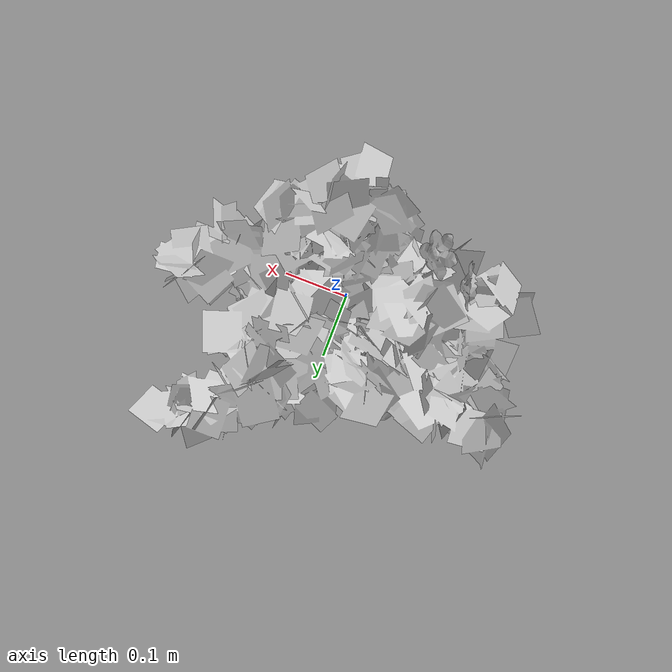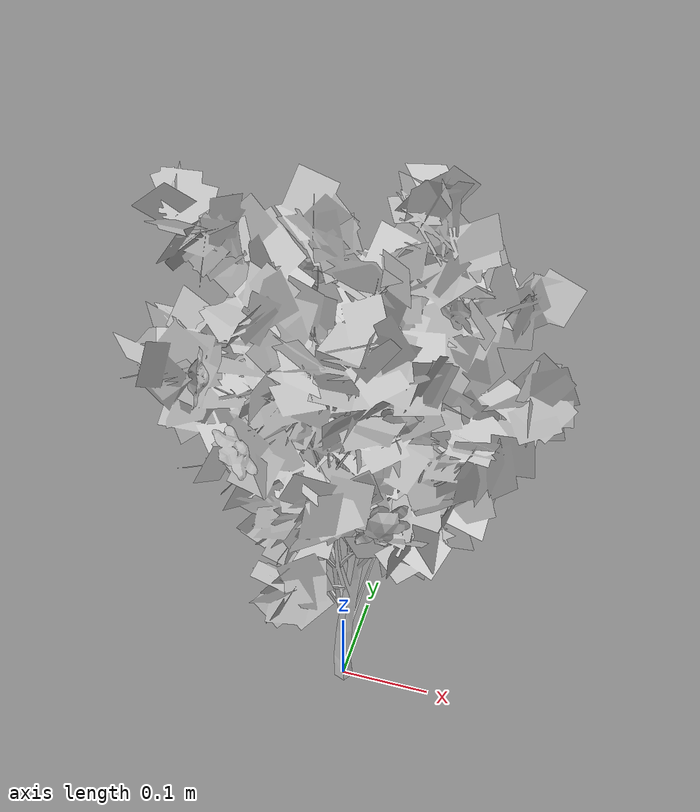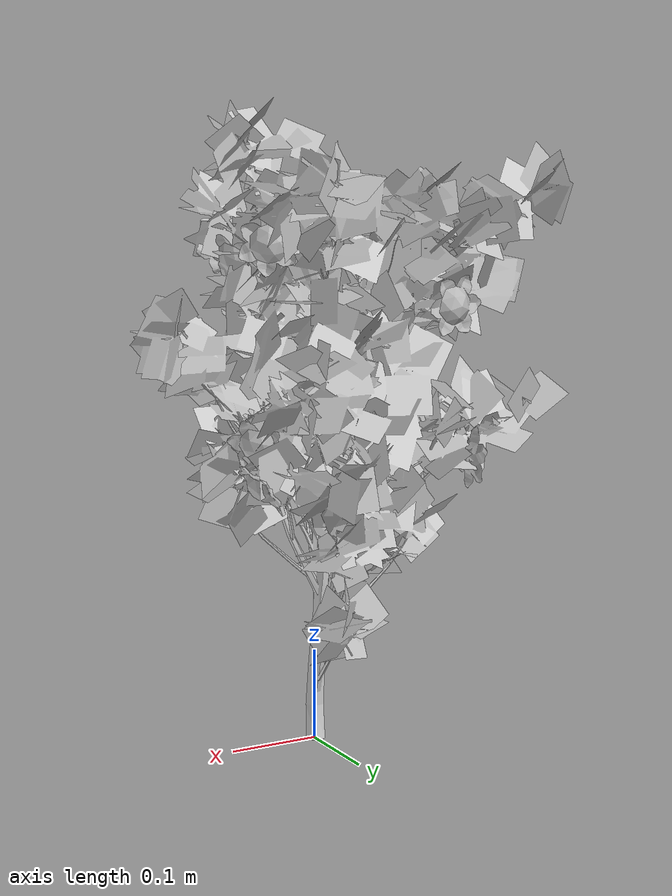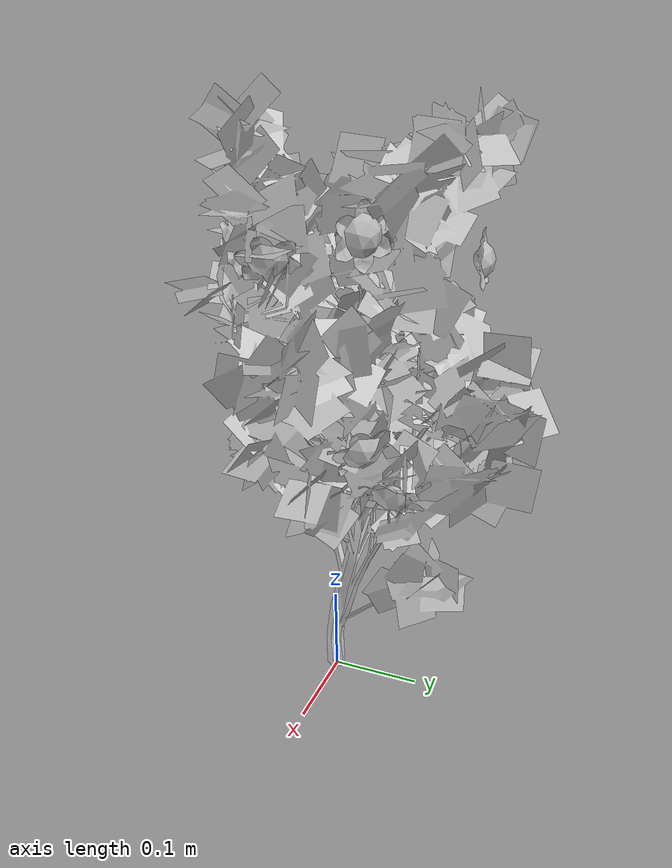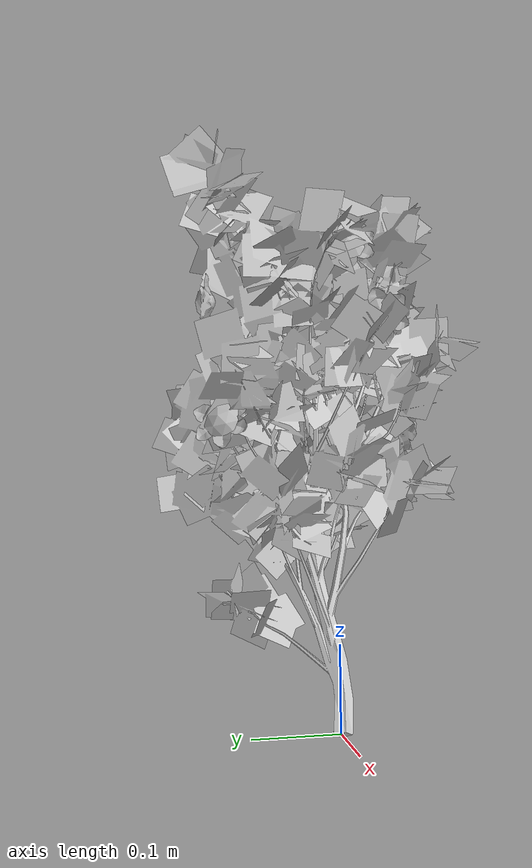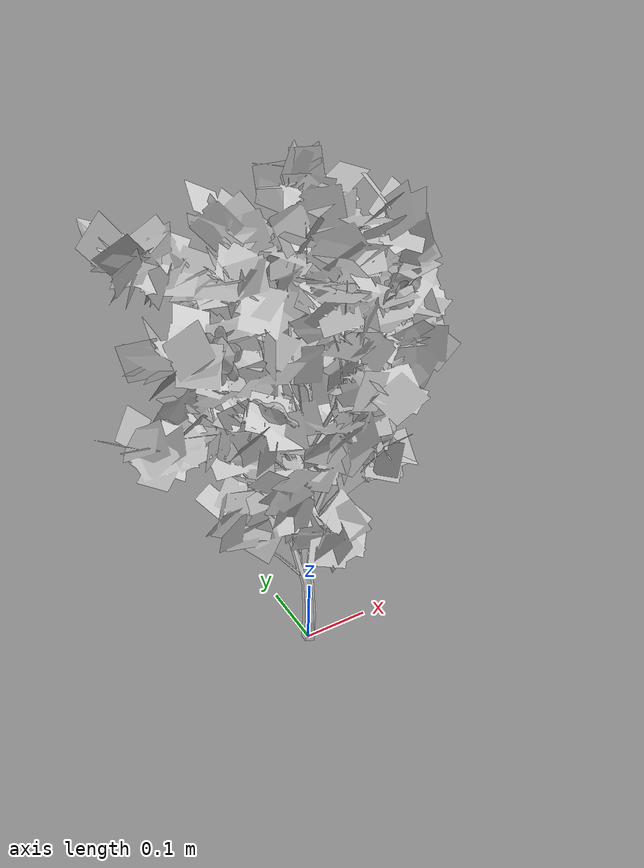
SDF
<?xml version="1.0" ?>
<sdf version="1.6">
  <model name="tree-flowers">
    <!--Skew-Seed:3545704200-->
    <static>true</static>
    <link name="link"/>
    <include>
      <uri>model://tree-mesh</uri>
      <pose>0 0 0 0 0 0</pose>
    </include>
    <joint name="tree_joint" type="fixed">
      <child>tree-mesh::link</child>
      <parent>link</parent>
    </joint>
    <include>
      <name>bramble_0</name>
      <uri>model://bramble</uri>
      <pose> -0.12565078755035894 0.10261270749985395 0.32610344041492023 -3.135904181315 1.4591757783485764 0.0</pose>
    </include>
    <joint name="flower_joint_0" type="fixed">
      <child>bramble_0::flower_link</child>
      <parent>link</parent>
    </joint>
    <include>
      <name>bramble_1</name>
      <uri>model://bramble</uri>
      <pose> 0.11953165592132584 0.11709060932082484 0.33589546040760826 -0.027163319111358164 2.2324499514339142 0.0</pose>
    </include>
    <joint name="flower_joint_1" type="fixed">
      <child>bramble_1::flower_link</child>
      <parent>link</parent>
    </joint>
    <include>
      <name>bramble_2</name>
      <uri>model://bramble</uri>
      <pose> 0.07662988232020901 -0.05576138323982696 0.5518752517943515 1.2191285718587752 2.3171176489455183 0.0</pose>
    </include>
    <joint name="flower_joint_2" type="fixed">
      <child>bramble_2::flower_link</child>
      <parent>link</parent>
    </joint>
    <include>
      <name>bramble_3</name>
      <uri>model://bramble</uri>
      <pose> 0.08940937145922584 0.06972085000464825 0.578634463934071 -0.9858277746624899 1.3856501326912194 0.0</pose>
    </include>
    <joint name="flower_joint_3" type="fixed">
      <child>bramble_3::flower_link</child>
      <parent>link</parent>
    </joint>
    <include>
      <name>bramble_4</name>
      <uri>model://bramble</uri>
      <pose> -0.08892152021760459 -0.07087126115383685 0.46093822945078067 -3.412047291551322 0.8077659974693465 0.0</pose>
    </include>
    <joint name="flower_joint_4" type="fixed">
      <child>bramble_4::flower_link</child>
      <parent>link</parent>
    </joint>
    <include>
      <name>bramble_5</name>
      <uri>model://bramble</uri>
      <pose> -0.13508196609644627 -0.04279473659747799 0.5244808887812394 -3.408501729570891 1.6845458931364303 0.0</pose>
    </include>
    <joint name="flower_joint_5" type="fixed">
      <child>bramble_5::flower_link</child>
      <parent>link</parent>
    </joint>
    <include>
      <name>bramble_6</name>
      <uri>model://bramble</uri>
      <pose> 0.10515833363725474 0.07688660423606118 0.3678942882325088 -0.7199681477598827 2.0145142319456717 0.0</pose>
    </include>
    <joint name="flower_joint_6" type="fixed">
      <child>bramble_6::flower_link</child>
      <parent>link</parent>
    </joint>
    <include>
      <name>bramble_7</name>
      <uri>model://bramble</uri>
      <pose> -0.09198935188794974 0.12971615607591788 0.5040286169790149 -1.773391296051141 1.9917702455534205 0.0</pose>
    </include>
    <joint name="flower_joint_7" type="fixed">
      <child>bramble_7::flower_link</child>
      <parent>link</parent>
    </joint>
    <include>
      <name>bramble_8</name>
      <uri>model://bramble</uri>
      <pose> 0.07478767625620727 -0.030672796733788497 0.5424156258194652 -0.3860024085270195 2.03612190815209 0.0</pose>
    </include>
    <joint name="flower_joint_8" type="fixed">
      <child>bramble_8::flower_link</child>
      <parent>link</parent>
    </joint>
    <include>
      <name>bramble_9</name>
      <uri>model://bramble</uri>
      <pose> 0.05799957890076958 -0.06519035760236924 0.3874908695434085 0.962681531764773 1.510367220400992 0.0</pose>
    </include>
    <joint name="flower_joint_9" type="fixed">
      <child>bramble_9::flower_link</child>
      <parent>link</parent>
    </joint>
  </model>
</sdf>

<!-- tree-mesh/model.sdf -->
<sdf version="1.6">
  <model name="tree-mesh">
    <static>true</static>
    <link name="link">

      <collision name="collision">
        <geometry>
          <mesh>
            <uri>model://tree-mesh/meshes/new_tree.dae</uri>
            <scale>0.0625 0.0625 0.0625</scale>
          </mesh>
        </geometry>
      </collision>

      <!-- simplified collision for sake of speed since leaves shouldn't be blocking anyway -->

      <visual name="leaves">
        <geometry>
          <mesh>
            <uri>model://tree-mesh/meshes/leaves.dae</uri>
            <scale>0.0325 0.0325 0.0325</scale>
          </mesh>
        </geometry>
        <material>
          <script>
            <uri>model://tree-mesh/materials/scripts/</uri>
            <uri>model://tree-mesh/materials/textures/</uri>
            <name>NewTree/Branch</name>
          </script>
        </material>
      </visual>
      <visual name="bark">
        <geometry>
          <mesh>
            <uri>model://tree-mesh/meshes/bark.dae</uri>
            <scale>0.0325 0.0325 0.0325</scale>
          </mesh>
        </geometry>
        <material>
          <script>
            <uri>model://tree-mesh/materials/scripts/</uri>
            <uri>model://tree-mesh/materials/textures/</uri>
            <name>NewTree/Bark</name>
          </script>
        </material>
      </visual>
    </link>
  </model>
</sdf>

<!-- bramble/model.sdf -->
<sdf version="1.6">
  <model name="bramble-flower">
    <static>true</static>
    <link name="flower_link">
      <collision name="body_collision">
        <geometry>
          <mesh>
            <uri>model://bramble/meshes/bramble.dae</uri>
            <scale>0.4 0.4 0.4</scale>
          </mesh>
        </geometry>
      </collision>
      <visual name="petals">
        <geometry>
          <mesh>
            <uri>model://bramble/meshes/bramble.dae</uri>
            <scale>0.4 0.4 0.4</scale>
            <submesh>
              <name>petal</name>
            </submesh>
          </mesh>
        </geometry>
        <material>
          <script>
            <uri>model://bramble/materials/scripts/</uri>
            <uri>model://bramble/materials/textures/</uri>
            <name>Bramble/Petal</name>
          </script>
        </material>
      </visual>
      <visual name="carpel">
        <geometry>
          <mesh>
            <uri>model://bramble/meshes/bramble.dae</uri>
            <scale>0.4 0.4 0.4</scale>
            <submesh>
              <name>carpel</name>
            </submesh>
          </mesh>
        </geometry>
        <material>
          <script>
            <uri>model://bramble/materials/scripts/</uri>
            <uri>model://bramble/materials/textures/</uri>
            <name>Bramble/Carpel</name>
          </script>
        </material>
      </visual>
      <visual name="stamen">
        <geometry>
          <mesh>
            <uri>model://bramble/meshes/bramble.dae</uri>
            <scale>0.4 0.4 0.4</scale>
            <submesh>
              <name>stamen</name>
            </submesh>
          </mesh>
        </geometry>
        <material>
          <script>
            <uri>model://bramble/materials/scripts/</uri>
            <uri>model://bramble/materials/textures/</uri>
            <name>Bramble/Stamen</name>
          </script>
        </material>
      </visual>
    </link>
  </model>
</sdf>
